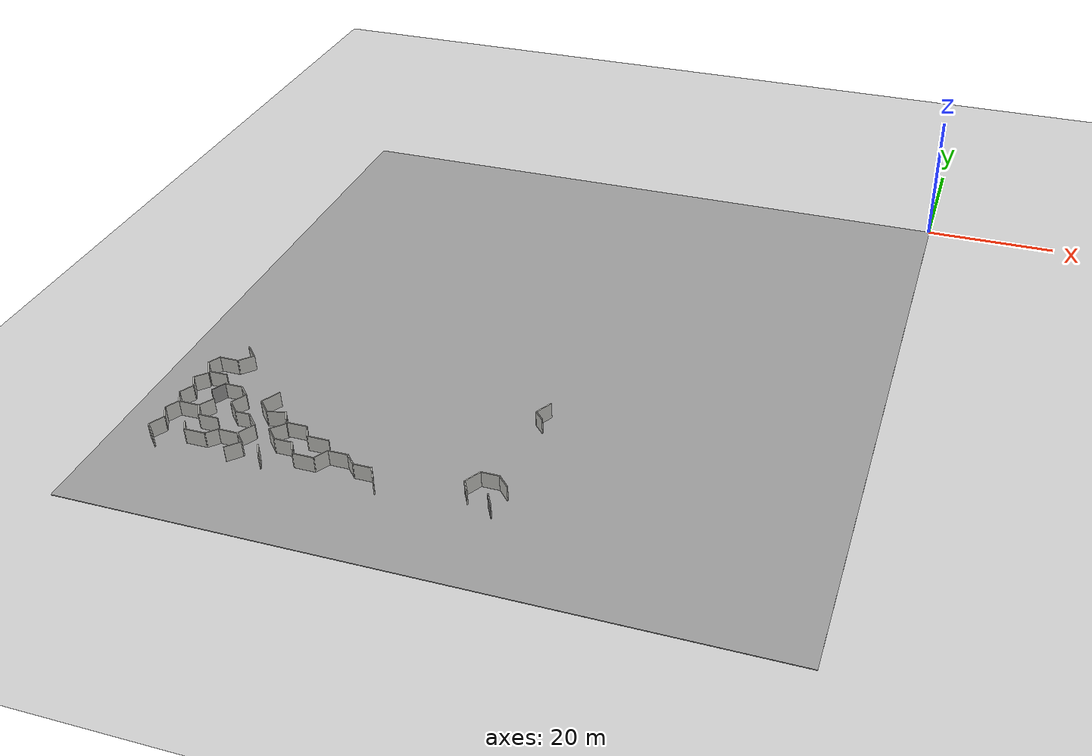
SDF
<sdf version="1.6">
 <world name="default">
  <model name="ground_plane">
   <pose>50 50 0 0 -0 0</pose>
   <static>1</static>
   <link name="link">
    <collision name="collision">
     <geometry><plane><normal>0 0 1</normal><size>100 100</size></plane></geometry>
     <surface><friction><ode><mu>100</mu><mu2>50</mu2></ode></friction></surface>
    </collision>
    <visual name="visual">
     <cast_shadows>0</cast_shadows>
     <geometry><plane><normal>0 0 1</normal><size>100 100</size></plane></geometry>
     <material>
      <script><uri>file://media/materials/scripts/gazebo.material</uri><name>Gazebo/Grey</name></script>
     </material>
    </visual>
   </link>
  </model>
  <model name="ground_plane_1">
   <static>1</static>
   <link name="link">
    <collision name="collision">
     <geometry><plane><normal>0 0 1</normal><size>100 100</size></plane></geometry>
     <surface><friction><ode><mu>100</mu><mu2>50</mu2></ode></friction></surface>
    </collision>
    <visual name="visual">
     <cast_shadows>0</cast_shadows>
     <geometry><plane><normal>0 0 1</normal><size>100 100</size></plane></geometry>
     <material>
      <script><uri>file://media/materials/scripts/gazebo.material</uri><name>Gazebo/Grey</name></script>
     </material>
    </visual>
   </link>
   <pose>-50 -50 0 0 -0 0</pose>
  </model>
  <model name="maze_1">
   <pose>-54.4916 -79.5001 0 0 -0 0</pose>
   <link name="Wall_107">
    <collision name="Wall_107_Collision">
     <geometry><box><size>2.25 0.15 2.5</size></box></geometry>
     <pose>0 0 1.25 0 -0 0</pose>
    </collision>
    <visual name="Wall_107_Visual">
     <pose>0 0 1.25 0 -0 0</pose>
     <geometry><box><size>2.25 0.15 2.5</size></box></geometry>
     <material>
      <script><uri>file://media/materials/scripts/gazebo.material</uri><name>Gazebo/CeilingTiled</name></script>
      <ambient>1 1 1 1</ambient>
     </material>
     <meta><layer>0</layer></meta>
    </visual>
    <pose>-22.6837 -7.08881 0 0 -0 -1.0472</pose>
   </link>
   <link name="Wall_112">
    <collision name="Wall_112_Collision">
     <geometry><box><size>3.25 0.15 2.5</size></box></geometry>
     <pose>0 0 1.25 0 -0 0</pose>
    </collision>
    <visual name="Wall_112_Visual">
     <pose>0 0 1.25 0 -0 0</pose>
     <geometry><box><size>3.25 0.15 2.5</size></box></geometry>
     <material>
      <script><uri>file://media/materials/scripts/gazebo.material</uri><name>Gazebo/CeilingTiled</name></script>
      <ambient>1 1 1 1</ambient>
     </material>
     <meta><layer>0</layer></meta>
    </visual>
    <pose>-16.4783 -6.40245 0 0 -0 3.14159</pose>
   </link>
   <link name="Wall_113">
    <collision name="Wall_113_Collision">
     <geometry><box><size>2.5 0.15 2.5</size></box></geometry>
     <pose>0 0 1.25 0 -0 0</pose>
    </collision>
    <visual name="Wall_113_Visual">
     <pose>0 0 1.25 0 -0 0</pose>
     <geometry><box><size>2.5 0.15 2.5</size></box></geometry>
     <material>
      <script><uri>file://media/materials/scripts/gazebo.material</uri><name>Gazebo/CeilingTiled</name></script>
      <ambient>1 1 1 1</ambient>
     </material>
     <meta><layer>0</layer></meta>
    </visual>
    <pose>-18.6158 -5.38487 0 0 -0 2.0944</pose>
   </link>
   <link name="Wall_114">
    <collision name="Wall_114_Collision">
     <geometry><box><size>2.75 0.15 2.5</size></box></geometry>
     <pose>0 0 1.25 0 -0 0</pose>
    </collision>
    <visual name="Wall_114_Visual">
     <pose>0 0 1.25 0 -0 0</pose>
     <geometry><box><size>2.75 0.15 2.5</size></box></geometry>
     <material>
      <script><uri>file://media/materials/scripts/gazebo.material</uri><name>Gazebo/CeilingTiled</name></script>
      <ambient>1 1 1 1</ambient>
     </material>
     <meta><layer>0</layer></meta>
    </visual>
    <pose>-20.5033 -4.36729 0 0 -0 3.14159</pose>
   </link>
   <link name="Wall_115">
    <collision name="Wall_115_Collision">
     <geometry><box><size>2.5 0.15 2.5</size></box></geometry>
     <pose>0 0 1.25 0 -0 0</pose>
    </collision>
    <visual name="Wall_115_Visual">
     <pose>0 0 1.25 0 -0 0</pose>
     <geometry><box><size>2.5 0.15 2.5</size></box></geometry>
     <material>
      <script><uri>file://media/materials/scripts/gazebo.material</uri><name>Gazebo/CeilingTiled</name></script>
      <ambient>1 1 1 1</ambient>
     </material>
     <meta><layer>0</layer></meta>
    </visual>
    <pose>-22.6341 -3.53644 0 0 -0 2.35619</pose>
   </link>
   <link name="Wall_116">
    <collision name="Wall_116_Collision">
     <geometry><box><size>2.5 0.15 2.5</size></box></geometry>
     <pose>0 0 1.25 0 -0 0</pose>
    </collision>
    <visual name="Wall_116_Visual">
     <pose>0 0 1.25 0 -0 0</pose>
     <geometry><box><size>2.5 0.15 2.5</size></box></geometry>
     <material>
      <script><uri>file://media/materials/scripts/gazebo.material</uri><name>Gazebo/CeilingTiled</name></script>
      <ambient>1 1 1 1</ambient>
     </material>
     <meta><layer>0</layer></meta>
    </visual>
    <pose>-22.6341 -1.87474 0 0 -0 0.785398</pose>
   </link>
   <link name="Wall_117">
    <collision name="Wall_117_Collision">
     <geometry><box><size>2.75 0.15 2.5</size></box></geometry>
     <pose>0 0 1.25 0 -0 0</pose>
    </collision>
    <visual name="Wall_117_Visual">
     <pose>0 0 1.25 0 -0 0</pose>
     <geometry><box><size>2.75 0.15 2.5</size></box></geometry>
     <material>
      <script><uri>file://media/materials/scripts/gazebo.material</uri><name>Gazebo/CeilingTiled</name></script>
      <ambient>1 1 1 1</ambient>
     </material>
     <meta><layer>0</layer></meta>
    </visual>
    <pose>-22.4533 0.081949 0 0 -0 2.0944</pose>
   </link>
   <link name="Wall_118">
    <collision name="Wall_118_Collision">
     <geometry><box><size>2.75 0.15 2.5</size></box></geometry>
     <pose>0 0 1.25 0 -0 0</pose>
    </collision>
    <visual name="Wall_118_Visual">
     <pose>0 0 1.25 0 -0 0</pose>
     <geometry><box><size>2.75 0.15 2.5</size></box></geometry>
     <material>
      <script><uri>file://media/materials/scripts/gazebo.material</uri><name>Gazebo/CeilingTiled</name></script>
      <ambient>1 1 1 1</ambient>
     </material>
     <meta><layer>0</layer></meta>
    </visual>
    <pose>-24.359 0.871317 0 0 -0 -2.87979</pose>
   </link>
   <link name="Wall_119">
    <collision name="Wall_119_Collision">
     <geometry><box><size>2.75 0.15 2.5</size></box></geometry>
     <pose>0 0 1.25 0 -0 0</pose>
    </collision>
    <visual name="Wall_119_Visual">
     <pose>0 0 1.25 0 -0 0</pose>
     <geometry><box><size>2.75 0.15 2.5</size></box></geometry>
     <material>
      <script><uri>file://media/materials/scripts/gazebo.material</uri><name>Gazebo/CeilingTiled</name></script>
      <ambient>1 1 1 1</ambient>
     </material>
     <meta><layer>0</layer></meta>
    </visual>
    <pose>-26.5339 1.45409 0 0 -0 2.35619</pose>
   </link>
   <link name="Wall_120">
    <collision name="Wall_120_Collision">
     <geometry><box><size>3 0.15 2.5</size></box></geometry>
     <pose>0 0 1.25 0 -0 0</pose>
    </collision>
    <visual name="Wall_120_Visual">
     <pose>0 0 1.25 0 -0 0</pose>
     <geometry><box><size>3 0.15 2.5</size></box></geometry>
     <material>
      <script><uri>file://media/materials/scripts/gazebo.material</uri><name>Gazebo/CeilingTiled</name></script>
      <ambient>1 1 1 1</ambient>
     </material>
     <meta><layer>0</layer></meta>
    </visual>
    <pose>-26.7407 3.60742 0 0 -0 1.0472</pose>
   </link>
   <link name="Wall_122">
    <collision name="Wall_122_Collision">
     <geometry><box><size>3.25 0.15 2.5</size></box></geometry>
     <pose>0 0 1.25 0 -0 0</pose>
    </collision>
    <visual name="Wall_122_Visual">
     <pose>0 0 1.25 0 -0 0</pose>
     <geometry><box><size>3.25 0.15 2.5</size></box></geometry>
     <material>
      <script><uri>file://media/materials/scripts/gazebo.material</uri><name>Gazebo/CeilingTiled</name></script>
      <ambient>1 1 1 1</ambient>
     </material>
     <meta><layer>0</layer></meta>
    </visual>
    <pose>-16.2961 -2.59917 0 0 -0 3.14159</pose>
   </link>
   <link name="Wall_123">
    <collision name="Wall_123_Collision">
     <geometry><box><size>2.25 0.15 2.5</size></box></geometry>
     <pose>0 0 1.25 0 -0 0</pose>
    </collision>
    <visual name="Wall_123_Visual">
     <pose>0 0 1.25 0 -0 0</pose>
     <geometry><box><size>2.25 0.15 2.5</size></box></geometry>
     <material>
      <script><uri>file://media/materials/scripts/gazebo.material</uri><name>Gazebo/CeilingTiled</name></script>
      <ambient>1 1 1 1</ambient>
     </material>
     <meta><layer>0</layer></meta>
    </visual>
    <pose>-18.3711 -1.68985 0 0 -0 2.0944</pose>
   </link>
   <link name="Wall_124">
    <collision name="Wall_124_Collision">
     <geometry><box><size>3.25 0.15 2.5</size></box></geometry>
     <pose>0 0 1.25 0 -0 0</pose>
    </collision>
    <visual name="Wall_124_Visual">
     <pose>0 0 1.25 0 -0 0</pose>
     <geometry><box><size>3.25 0.15 2.5</size></box></geometry>
     <material>
      <script><uri>file://media/materials/scripts/gazebo.material</uri><name>Gazebo/CeilingTiled</name></script>
      <ambient>1 1 1 1</ambient>
     </material>
     <meta><layer>0</layer></meta>
    </visual>
    <pose>-20.4461 -0.780521 0 0 -0 3.14159</pose>
   </link>
   <link name="Wall_129">
    <collision name="Wall_129_Collision">
     <geometry><box><size>2.75 0.15 2.5</size></box></geometry>
     <pose>0 0 1.25 0 -0 0</pose>
    </collision>
    <visual name="Wall_129_Visual">
     <pose>0 0 1.25 0 -0 0</pose>
     <geometry><box><size>2.75 0.15 2.5</size></box></geometry>
     <material>
      <script><uri>file://media/materials/scripts/gazebo.material</uri><name>Gazebo/CeilingTiled</name></script>
      <ambient>1 1 1 1</ambient>
     </material>
     <meta><layer>0</layer></meta>
    </visual>
    <pose>-6.22192 -7.135 0 0 -0 2.0944</pose>
   </link>
   <link name="Wall_130">
    <collision name="Wall_130_Collision">
     <geometry><box><size>2.75 0.15 2.5</size></box></geometry>
     <pose>0 0 1.25 0 -0 0</pose>
    </collision>
    <visual name="Wall_130_Visual">
     <pose>0 0 1.25 0 -0 0</pose>
     <geometry><box><size>2.75 0.15 2.5</size></box></geometry>
     <material>
      <script><uri>file://media/materials/scripts/gazebo.material</uri><name>Gazebo/CeilingTiled</name></script>
      <ambient>1 1 1 1</ambient>
     </material>
     <meta><layer>0</layer></meta>
    </visual>
    <pose>-8.17192 -6.00916 0 0 -0 3.14159</pose>
   </link>
   <link name="Wall_131">
    <collision name="Wall_131_Collision">
     <geometry><box><size>2.25 0.15 2.5</size></box></geometry>
     <pose>0 0 1.25 0 -0 0</pose>
    </collision>
    <visual name="Wall_131_Visual">
     <pose>0 0 1.25 0 -0 0</pose>
     <geometry><box><size>2.25 0.15 2.5</size></box></geometry>
     <material>
      <script><uri>file://media/materials/scripts/gazebo.material</uri><name>Gazebo/CeilingTiled</name></script>
      <ambient>1 1 1 1</ambient>
     </material>
     <meta><layer>0</layer></meta>
    </visual>
    <pose>-10.2144 -5.2667 0 0 -0 2.35619</pose>
   </link>
   <link name="Wall_132">
    <collision name="Wall_132_Collision">
     <geometry><box><size>3 0.15 2.5</size></box></geometry>
     <pose>0 0 1.25 0 -0 0</pose>
    </collision>
    <visual name="Wall_132_Visual">
     <pose>0 0 1.25 0 -0 0</pose>
     <geometry><box><size>3 0.15 2.5</size></box></geometry>
     <material>
      <script><uri>file://media/materials/scripts/gazebo.material</uri><name>Gazebo/CeilingTiled</name></script>
      <ambient>1 1 1 1</ambient>
     </material>
     <meta><layer>0</layer></meta>
    </visual>
    <pose>-12.3818 -4.52424 0 0 -0 3.14159</pose>
   </link>
   <link name="Wall_133">
    <collision name="Wall_133_Collision">
     <geometry><box><size>2.33753 0.15 2.5</size></box></geometry>
     <pose>0 0 1.25 0 -0 0</pose>
    </collision>
    <visual name="Wall_133_Visual">
     <pose>0 0 1.25 0 -0 0</pose>
     <geometry><box><size>2.33753 0.15 2.5</size></box></geometry>
     <material>
      <script><uri>file://media/materials/scripts/gazebo.material</uri><name>Gazebo/CeilingTiled</name></script>
      <ambient>1 1 1 1</ambient>
     </material>
     <meta><layer>0</layer></meta>
    </visual>
    <pose>-14.3676 -5.46334 0 0 -0 -2.10906</pose>
   </link>
   <link name="Wall_141">
    <collision name="Wall_141_Collision">
     <geometry><box><size>2 0.15 2.5</size></box></geometry>
     <pose>0 0 1.25 0 -0 0</pose>
    </collision>
    <visual name="Wall_141_Visual">
     <pose>0 0 1.25 0 -0 0</pose>
     <geometry><box><size>2 0.15 2.5</size></box></geometry>
     <material>
      <script><uri>file://media/materials/scripts/gazebo.material</uri><name>Gazebo/CeilingTiled</name></script>
      <ambient>1 1 1 1</ambient>
     </material>
     <meta><layer>0</layer></meta>
    </visual>
    <pose>6.14243 -5.67216 0 0 -0 2.0944</pose>
   </link>
   <link name="Wall_142">
    <collision name="Wall_142_Collision">
     <geometry><box><size>2.75 0.15 2.5</size></box></geometry>
     <pose>0 0 1.25 0 -0 0</pose>
    </collision>
    <visual name="Wall_142_Visual">
     <pose>0 0 1.25 0 -0 0</pose>
     <geometry><box><size>2.75 0.15 2.5</size></box></geometry>
     <material>
      <script><uri>file://media/materials/scripts/gazebo.material</uri><name>Gazebo/CeilingTiled</name></script>
      <ambient>1 1 1 1</ambient>
     </material>
     <meta><layer>0</layer></meta>
    </visual>
    <pose>6.32993 -3.74525 0 0 -0 1.0472</pose>
   </link>
   <link name="Wall_143">
    <collision name="Wall_143_Collision">
     <geometry><box><size>2.75 0.15 2.5</size></box></geometry>
     <pose>0 0 1.25 0 -0 0</pose>
    </collision>
    <visual name="Wall_143_Visual">
     <pose>0 0 1.25 0 -0 0</pose>
     <geometry><box><size>2.75 0.15 2.5</size></box></geometry>
     <material>
      <script><uri>file://media/materials/scripts/gazebo.material</uri><name>Gazebo/CeilingTiled</name></script>
      <ambient>1 1 1 1</ambient>
     </material>
     <meta><layer>0</layer></meta>
    </visual>
    <pose>8.27993 -2.61942 0 0 -0 0</pose>
   </link>
   <link name="Wall_144">
    <collision name="Wall_144_Collision">
     <geometry><box><size>2.5 0.15 2.5</size></box></geometry>
     <pose>0 0 1.25 0 -0 0</pose>
    </collision>
    <visual name="Wall_144_Visual">
     <pose>0 0 1.25 0 -0 0</pose>
     <geometry><box><size>2.5 0.15 2.5</size></box></geometry>
     <material>
      <script><uri>file://media/materials/scripts/gazebo.material</uri><name>Gazebo/CeilingTiled</name></script>
      <ambient>1 1 1 1</ambient>
     </material>
     <meta><layer>0</layer></meta>
    </visual>
    <pose>10.4108 -3.45027 0 0 -0 -0.785398</pose>
   </link>
   <link name="Wall_169">
    <collision name="Wall_169_Collision">
     <geometry><box><size>2 0.15 2.5</size></box></geometry>
     <pose>0 0 1.25 0 -0 0</pose>
    </collision>
    <visual name="Wall_169_Visual">
     <pose>0 0 1.25 0 -0 0</pose>
     <geometry><box><size>2 0.15 2.5</size></box></geometry>
     <material>
      <script><uri>file://media/materials/scripts/gazebo.material</uri><name>Gazebo/CeilingTiled</name></script>
      <ambient>1 1 1 1</ambient>
     </material>
     <meta><layer>0</layer></meta>
    </visual>
    <pose>10.1475 10.6498 0 0 -0 2.35619</pose>
   </link>
   <link name="Wall_170">
    <collision name="Wall_170_Collision">
     <geometry><box><size>2.75 0.15 2.5</size></box></geometry>
     <pose>0 0 1.25 0 -0 0</pose>
    </collision>
    <visual name="Wall_170_Visual">
     <pose>0 0 1.25 0 -0 0</pose>
     <geometry><box><size>2.75 0.15 2.5</size></box></geometry>
     <material>
      <script><uri>file://media/materials/scripts/gazebo.material</uri><name>Gazebo/CeilingTiled</name></script>
      <ambient>1 1 1 1</ambient>
     </material>
     <meta><layer>0</layer></meta>
    </visual>
    <pose>10.1434 12.4297 0 0 -0 1.0472</pose>
   </link>
   <link name="Wall_5">
    <collision name="Wall_5_Collision">
     <geometry><box><size>2.25 0.15 2.5</size></box></geometry>
     <pose>0 0 1.25 0 -0 0</pose>
    </collision>
    <visual name="Wall_5_Visual">
     <pose>0 0 1.25 0 -0 0</pose>
     <geometry><box><size>2.25 0.15 2.5</size></box></geometry>
     <material>
      <script><uri>file://media/materials/scripts/gazebo.material</uri><name>Gazebo/Grey</name></script>
      <ambient>1 1 1 1</ambient>
     </material>
     <meta><layer>0</layer></meta>
    </visual>
    <pose>9.94595 -7.17018 0 0 -0 -1.0472</pose>
   </link>
   <link name="Wall_61">
    <collision name="Wall_61_Collision">
     <geometry><box><size>2.25 0.15 2.5</size></box></geometry>
     <pose>0 0 1.25 0 -0 0</pose>
    </collision>
    <visual name="Wall_61_Visual">
     <pose>0 0 1.25 0 -0 0</pose>
     <geometry><box><size>2.25 0.15 2.5</size></box></geometry>
     <material>
      <script><uri>file://media/materials/scripts/gazebo.material</uri><name>Gazebo/CeilingTiled</name></script>
      <ambient>1 1 1 1</ambient>
     </material>
     <meta><layer>0</layer></meta>
    </visual>
    <pose>-38.7606 -7.30854 0 0 -0 2.35619</pose>
   </link>
   <link name="Wall_62">
    <collision name="Wall_62_Collision">
     <geometry><box><size>2.5 0.15 2.5</size></box></geometry>
     <pose>0 0 1.25 0 -0 0</pose>
    </collision>
    <visual name="Wall_62_Visual">
     <pose>0 0 1.25 0 -0 0</pose>
     <geometry><box><size>2.5 0.15 2.5</size></box></geometry>
     <material>
      <script><uri>file://media/materials/scripts/gazebo.material</uri><name>Gazebo/CeilingTiled</name></script>
      <ambient>1 1 1 1</ambient>
     </material>
     <meta><layer>0</layer></meta>
    </visual>
    <pose>-38.9155 -5.5485 0 0 -0 1.0472</pose>
   </link>
   <link name="Wall_63">
    <collision name="Wall_63_Collision">
     <geometry><box><size>2.25 0.15 2.5</size></box></geometry>
     <pose>0 0 1.25 0 -0 0</pose>
    </collision>
    <visual name="Wall_63_Visual">
     <pose>0 0 1.25 0 -0 0</pose>
     <geometry><box><size>2.25 0.15 2.5</size></box></geometry>
     <material>
      <script><uri>file://media/materials/scripts/gazebo.material</uri><name>Gazebo/CeilingTiled</name></script>
      <ambient>1 1 1 1</ambient>
     </material>
     <meta><layer>0</layer></meta>
    </visual>
    <pose>-38.853 -3.6216 0 0 -0 2.0944</pose>
   </link>
   <link name="Wall_64">
    <collision name="Wall_64_Collision">
     <geometry><box><size>2.25 0.15 2.5</size></box></geometry>
     <pose>0 0 1.25 0 -0 0</pose>
    </collision>
    <visual name="Wall_64_Visual">
     <pose>0 0 1.25 0 -0 0</pose>
     <geometry><box><size>2.25 0.15 2.5</size></box></geometry>
     <material>
      <script><uri>file://media/materials/scripts/gazebo.material</uri><name>Gazebo/CeilingTiled</name></script>
      <ambient>1 1 1 1</ambient>
     </material>
     <meta><layer>0</layer></meta>
    </visual>
    <pose>-38.853 -1.80294 0 0 -0 1.0472</pose>
   </link>
   <link name="Wall_65">
    <collision name="Wall_65_Collision">
     <geometry><box><size>3.25 0.15 2.5</size></box></geometry>
     <pose>0 0 1.25 0 -0 0</pose>
    </collision>
    <visual name="Wall_65_Visual">
     <pose>0 0 1.25 0 -0 0</pose>
     <geometry><box><size>3.25 0.15 2.5</size></box></geometry>
     <material>
      <script><uri>file://media/materials/scripts/gazebo.material</uri><name>Gazebo/CeilingTiled</name></script>
      <ambient>1 1 1 1</ambient>
     </material>
     <meta><layer>0</layer></meta>
    </visual>
    <pose>-36.778 -0.893615 0 0 -0 0</pose>
   </link>
   <link name="Wall_66">
    <collision name="Wall_66_Collision">
     <geometry><box><size>2.25 0.15 2.5</size></box></geometry>
     <pose>0 0 1.25 0 -0 0</pose>
    </collision>
    <visual name="Wall_66_Visual">
     <pose>0 0 1.25 0 -0 0</pose>
     <geometry><box><size>2.25 0.15 2.5</size></box></geometry>
     <material>
      <script><uri>file://media/materials/scripts/gazebo.material</uri><name>Gazebo/CeilingTiled</name></script>
      <ambient>1 1 1 1</ambient>
     </material>
     <meta><layer>0</layer></meta>
    </visual>
    <pose>-34.703 -1.80294 0 0 -0 -1.0472</pose>
   </link>
   <link name="Wall_67">
    <collision name="Wall_67_Collision">
     <geometry><box><size>3 0.15 2.5</size></box></geometry>
     <pose>0 0 1.25 0 -0 0</pose>
    </collision>
    <visual name="Wall_67_Visual">
     <pose>0 0 1.25 0 -0 0</pose>
     <geometry><box><size>3 0.15 2.5</size></box></geometry>
     <material>
      <script><uri>file://media/materials/scripts/gazebo.material</uri><name>Gazebo/CeilingTiled</name></script>
      <ambient>1 1 1 1</ambient>
     </material>
     <meta><layer>0</layer></meta>
    </visual>
    <pose>-32.753 -2.71227 0 0 -0 0</pose>
   </link>
   <link name="Wall_69">
    <collision name="Wall_69_Collision">
     <geometry><box><size>2.3062 0.15 2.5</size></box></geometry>
     <pose>0 0 1.25 0 -0 0</pose>
    </collision>
    <visual name="Wall_69_Visual">
     <pose>0 0 1.25 0 -0 0</pose>
     <geometry><box><size>2.3062 0.15 2.5</size></box></geometry>
     <material>
      <script><uri>file://media/materials/scripts/gazebo.material</uri><name>Gazebo/CeilingTiled</name></script>
      <ambient>1 1 1 1</ambient>
     </material>
     <meta><layer>0</layer></meta>
    </visual>
    <pose>-34.6295 0.003073 0 0 -0 -2.15938</pose>
   </link>
   <link name="Wall_71">
    <collision name="Wall_71_Collision">
     <geometry><box><size>2.25 0.15 2.5</size></box></geometry>
     <pose>0 0 1.25 0 -0 0</pose>
    </collision>
    <visual name="Wall_71_Visual">
     <pose>0 0 1.25 0 -0 0</pose>
     <geometry><box><size>2.25 0.15 2.5</size></box></geometry>
     <material>
      <script><uri>file://media/materials/scripts/gazebo.material</uri><name>Gazebo/CeilingTiled</name></script>
      <ambient>1 1 1 1</ambient>
     </material>
     <meta><layer>0</layer></meta>
    </visual>
    <pose>-38.853 0.015712 0 0 -0 2.0944</pose>
   </link>
   <link name="Wall_72">
    <collision name="Wall_72_Collision">
     <geometry><box><size>2.25 0.15 2.5</size></box></geometry>
     <pose>0 0 1.25 0 -0 0</pose>
    </collision>
    <visual name="Wall_72_Visual">
     <pose>0 0 1.25 0 -0 0</pose>
     <geometry><box><size>2.25 0.15 2.5</size></box></geometry>
     <material>
      <script><uri>file://media/materials/scripts/gazebo.material</uri><name>Gazebo/CeilingTiled</name></script>
      <ambient>1 1 1 1</ambient>
     </material>
     <meta><layer>0</layer></meta>
    </visual>
    <pose>-38.853 1.83437 0 0 -0 1.0472</pose>
   </link>
   <link name="Wall_73">
    <collision name="Wall_73_Collision">
     <geometry><box><size>2.25 0.15 2.5</size></box></geometry>
     <pose>0 0 1.25 0 -0 0</pose>
    </collision>
    <visual name="Wall_73_Visual">
     <pose>0 0 1.25 0 -0 0</pose>
     <geometry><box><size>2.25 0.15 2.5</size></box></geometry>
     <material>
      <script><uri>file://media/materials/scripts/gazebo.material</uri><name>Gazebo/CeilingTiled</name></script>
      <ambient>1 1 1 1</ambient>
     </material>
     <meta><layer>0</layer></meta>
    </visual>
    <pose>-38.853 3.65302 0 0 -0 2.0944</pose>
   </link>
   <link name="Wall_74">
    <collision name="Wall_74_Collision">
     <geometry><box><size>2.25 0.15 2.5</size></box></geometry>
     <pose>0 0 1.25 0 -0 0</pose>
    </collision>
    <visual name="Wall_74_Visual">
     <pose>0 0 1.25 0 -0 0</pose>
     <geometry><box><size>2.25 0.15 2.5</size></box></geometry>
     <material>
      <script><uri>file://media/materials/scripts/gazebo.material</uri><name>Gazebo/CeilingTiled</name></script>
      <ambient>1 1 1 1</ambient>
     </material>
     <meta><layer>0</layer></meta>
    </visual>
    <pose>-38.6356 5.30481 0 0 -0 0.785398</pose>
   </link>
   <link name="Wall_75">
    <collision name="Wall_75_Collision">
     <geometry><box><size>2.75 0.15 2.5</size></box></geometry>
     <pose>0 0 1.25 0 -0 0</pose>
    </collision>
    <visual name="Wall_75_Visual">
     <pose>0 0 1.25 0 -0 0</pose>
     <geometry><box><size>2.75 0.15 2.5</size></box></geometry>
     <material>
      <script><uri>file://media/materials/scripts/gazebo.material</uri><name>Gazebo/CeilingTiled</name></script>
      <ambient>1 1 1 1</ambient>
     </material>
     <meta><layer>0</layer></meta>
    </visual>
    <pose>-38.5431 7.1731 0 0 -0 2.0944</pose>
   </link>
   <link name="Wall_76">
    <collision name="Wall_76_Collision">
     <geometry><box><size>2 0.15 2.5</size></box></geometry>
     <pose>0 0 1.25 0 -0 0</pose>
    </collision>
    <visual name="Wall_76_Visual">
     <pose>0 0 1.25 0 -0 0</pose>
     <geometry><box><size>2 0.15 2.5</size></box></geometry>
     <material>
      <script><uri>file://media/materials/scripts/gazebo.material</uri><name>Gazebo/CeilingTiled</name></script>
      <ambient>1 1 1 1</ambient>
     </material>
     <meta><layer>0</layer></meta>
    </visual>
    <pose>-38.7306 9.10001 0 0 -0 1.0472</pose>
   </link>
   <link name="Wall_77">
    <collision name="Wall_77_Collision">
     <geometry><box><size>3 0.15 2.5</size></box></geometry>
     <pose>0 0 1.25 0 -0 0</pose>
    </collision>
    <visual name="Wall_77_Visual">
     <pose>0 0 1.25 0 -0 0</pose>
     <geometry><box><size>3 0.15 2.5</size></box></geometry>
     <material>
      <script><uri>file://media/materials/scripts/gazebo.material</uri><name>Gazebo/CeilingTiled</name></script>
      <ambient>1 1 1 1</ambient>
     </material>
     <meta><layer>0</layer></meta>
    </visual>
    <pose>-36.8431 9.90108 0 0 -0 0</pose>
   </link>
   <link name="Wall_78">
    <collision name="Wall_78_Collision">
     <geometry><box><size>2.5 0.15 2.5</size></box></geometry>
     <pose>0 0 1.25 0 -0 0</pose>
    </collision>
    <visual name="Wall_78_Visual">
     <pose>0 0 1.25 0 -0 0</pose>
     <geometry><box><size>2.5 0.15 2.5</size></box></geometry>
     <material>
      <script><uri>file://media/materials/scripts/gazebo.material</uri><name>Gazebo/CeilingTiled</name></script>
      <ambient>1 1 1 1</ambient>
     </material>
     <meta><layer>0</layer></meta>
    </visual>
    <pose>-34.5873 10.7319 0 0 -0 0.785398</pose>
   </link>
   <link name="Wall_79">
    <collision name="Wall_79_Collision">
     <geometry><box><size>2.75 0.15 2.5</size></box></geometry>
     <pose>0 0 1.25 0 -0 0</pose>
    </collision>
    <visual name="Wall_79_Visual">
     <pose>0 0 1.25 0 -0 0</pose>
     <geometry><box><size>2.75 0.15 2.5</size></box></geometry>
     <material>
      <script><uri>file://media/materials/scripts/gazebo.material</uri><name>Gazebo/CeilingTiled</name></script>
      <ambient>1 1 1 1</ambient>
     </material>
     <meta><layer>0</layer></meta>
    </visual>
    <pose>-34.6757 12.482 0 0 -0 2.35619</pose>
   </link>
   <link name="Wall_81">
    <collision name="Wall_81_Collision">
     <geometry><box><size>2.75 0.15 2.5</size></box></geometry>
     <pose>0 0 1.25 0 -0 0</pose>
    </collision>
    <visual name="Wall_81_Visual">
     <pose>0 0 1.25 0 -0 0</pose>
     <geometry><box><size>2.75 0.15 2.5</size></box></geometry>
     <material>
      <script><uri>file://media/materials/scripts/gazebo.material</uri><name>Gazebo/CeilingTiled</name></script>
      <ambient>1 1 1 1</ambient>
     </material>
     <meta><layer>0</layer></meta>
    </visual>
    <pose>-36.5515 6.43296 0 0 -0 3.14159</pose>
   </link>
   <link name="Wall_83">
    <collision name="Wall_83_Collision">
     <geometry><box><size>2.25 0.15 2.5</size></box></geometry>
     <pose>0 0 1.25 0 -0 0</pose>
    </collision>
    <visual name="Wall_83_Visual">
     <pose>0 0 1.25 0 -0 0</pose>
     <geometry><box><size>2.25 0.15 2.5</size></box></geometry>
     <material>
      <script><uri>file://media/materials/scripts/gazebo.material</uri><name>Gazebo/Grey</name></script>
      <ambient>1 1 1 1</ambient>
     </material>
     <meta><layer>0</layer></meta>
    </visual>
    <pose>-34.8079 3.59924 0 0 -0 1.0472</pose>
   </link>
   <link name="Wall_84">
    <collision name="Wall_84_Collision">
     <geometry><box><size>2.75 0.15 2.5</size></box></geometry>
     <pose>0 0 1.25 0 -0 0</pose>
    </collision>
    <visual name="Wall_84_Visual">
     <pose>0 0 1.25 0 -0 0</pose>
     <geometry><box><size>2.75 0.15 2.5</size></box></geometry>
     <material>
      <script><uri>file://media/materials/scripts/gazebo.material</uri><name>Gazebo/CeilingTiled</name></script>
      <ambient>1 1 1 1</ambient>
     </material>
     <meta><layer>0</layer></meta>
    </visual>
    <pose>-32.9829 4.50857 0 0 -0 0</pose>
   </link>
   <link name="Wall_85">
    <collision name="Wall_85_Collision">
     <geometry><box><size>2.25 0.15 2.5</size></box></geometry>
     <pose>0 0 1.25 0 -0 0</pose>
    </collision>
    <visual name="Wall_85_Visual">
     <pose>0 0 1.25 0 -0 0</pose>
     <geometry><box><size>2.25 0.15 2.5</size></box></geometry>
     <material>
      <script><uri>file://media/materials/scripts/gazebo.material</uri><name>Gazebo/CeilingTiled</name></script>
      <ambient>1 1 1 1</ambient>
     </material>
     <meta><layer>0</layer></meta>
    </visual>
    <pose>-30.9404 3.76611 0 0 -0 -0.785398</pose>
   </link>
   <link name="Wall_86">
    <collision name="Wall_86_Collision">
     <geometry><box><size>2.5 0.15 2.5</size></box></geometry>
     <pose>0 0 1.25 0 -0 0</pose>
    </collision>
    <visual name="Wall_86_Visual">
     <pose>0 0 1.25 0 -0 0</pose>
     <geometry><box><size>2.5 0.15 2.5</size></box></geometry>
     <material>
      <script><uri>file://media/materials/scripts/gazebo.material</uri><name>Gazebo/CeilingTiled</name></script>
      <ambient>1 1 1 1</ambient>
     </material>
     <meta><layer>0</layer></meta>
    </visual>
    <pose>-30.7855 2.00606 0 0 -0 -2.0944</pose>
   </link>
   <link name="Wall_87">
    <collision name="Wall_87_Collision">
     <geometry><box><size>2.5 0.15 2.5</size></box></geometry>
     <pose>0 0 1.25 0 -0 0</pose>
    </collision>
    <visual name="Wall_87_Visual">
     <pose>0 0 1.25 0 -0 0</pose>
     <geometry><box><size>2.5 0.15 2.5</size></box></geometry>
     <material>
      <script><uri>file://media/materials/scripts/gazebo.material</uri><name>Gazebo/CeilingTiled</name></script>
      <ambient>1 1 1 1</ambient>
     </material>
     <meta><layer>0</layer></meta>
    </visual>
    <pose>-30.5421 0.157634 0 0 -0 -0.785398</pose>
   </link>
   <link name="Wall_88">
    <collision name="Wall_88_Collision">
     <geometry><box><size>2.25 0.15 2.5</size></box></geometry>
     <pose>0 0 1.25 0 -0 0</pose>
    </collision>
    <visual name="Wall_88_Visual">
     <pose>0 0 1.25 0 -0 0</pose>
     <geometry><box><size>2.25 0.15 2.5</size></box></geometry>
     <material>
      <script><uri>file://media/materials/scripts/gazebo.material</uri><name>Gazebo/CeilingTiled</name></script>
      <ambient>1 1 1 1</ambient>
     </material>
     <meta><layer>0</layer></meta>
    </visual>
    <pose>-28.6613 -0.673216 0 0 -0 0</pose>
   </link>
   <link name="Wall_89">
    <collision name="Wall_89_Collision">
     <geometry><box><size>2.75 0.15 2.5</size></box></geometry>
     <pose>0 0 1.25 0 -0 0</pose>
    </collision>
    <visual name="Wall_89_Visual">
     <pose>0 0 1.25 0 -0 0</pose>
     <geometry><box><size>2.75 0.15 2.5</size></box></geometry>
     <material>
      <script><uri>file://media/materials/scripts/gazebo.material</uri><name>Gazebo/CeilingTiled</name></script>
      <ambient>1 1 1 1</ambient>
     </material>
     <meta><layer>0</layer></meta>
    </visual>
    <pose>-26.692 -1.59245 0 0 -0 -0.785398</pose>
   </link>
   <link name="Wall_9">
    <collision name="Wall_9_Collision">
     <geometry><box><size>2.25 0.15 2.5</size></box></geometry>
     <pose>0 0 1.25 0 -0 0</pose>
    </collision>
    <visual name="Wall_9_Visual">
     <pose>0 0 1.25 0 -0 0</pose>
     <geometry><box><size>2.25 0.15 2.5</size></box></geometry>
     <material>
      <script><uri>file://media/materials/scripts/gazebo.material</uri><name>Gazebo/CeilingTiled</name></script>
      <ambient>1 1 1 1</ambient>
     </material>
     <meta><layer>0</layer></meta>
    </visual>
    <pose>9.94595 -7.17018 0 0 -0 -1.0472</pose>
   </link>
   <link name="Wall_90">
    <collision name="Wall_90_Collision">
     <geometry><box><size>2.75 0.15 2.5</size></box></geometry>
     <pose>0 0 1.25 0 -0 0</pose>
    </collision>
    <visual name="Wall_90_Visual">
     <pose>0 0 1.25 0 -0 0</pose>
     <geometry><box><size>2.75 0.15 2.5</size></box></geometry>
     <material>
      <script><uri>file://media/materials/scripts/gazebo.material</uri><name>Gazebo/CeilingTiled</name></script>
      <ambient>1 1 1 1</ambient>
     </material>
     <meta><layer>0</layer></meta>
    </visual>
    <pose>-26.4228 -3.63753 0 0 -0 -2.0944</pose>
   </link>
   <link name="Wall_91">
    <collision name="Wall_91_Collision">
     <geometry><box><size>3 0.15 2.5</size></box></geometry>
     <pose>0 0 1.25 0 -0 0</pose>
    </collision>
    <visual name="Wall_91_Visual">
     <pose>0 0 1.25 0 -0 0</pose>
     <geometry><box><size>3 0.15 2.5</size></box></geometry>
     <material>
      <script><uri>file://media/materials/scripts/gazebo.material</uri><name>Gazebo/CeilingTiled</name></script>
      <ambient>1 1 1 1</ambient>
     </material>
     <meta><layer>0</layer></meta>
    </visual>
    <pose>-28.4978 -4.76336 0 0 -0 3.14159</pose>
   </link>
   <link name="Wall_92">
    <collision name="Wall_92_Collision">
     <geometry><box><size>2 0.15 2.5</size></box></geometry>
     <pose>0 0 1.25 0 -0 0</pose>
    </collision>
    <visual name="Wall_92_Visual">
     <pose>0 0 1.25 0 -0 0</pose>
     <geometry><box><size>2 0.15 2.5</size></box></geometry>
     <material>
      <script><uri>file://media/materials/scripts/gazebo.material</uri><name>Gazebo/CeilingTiled</name></script>
      <ambient>1 1 1 1</ambient>
     </material>
     <meta><layer>0</layer></meta>
    </visual>
    <pose>-30.5769 -5.41743 0 0 -0 -2.35619</pose>
   </link>
   <link name="Wall_93">
    <collision name="Wall_93_Collision">
     <geometry><box><size>3.25 0.15 2.5</size></box></geometry>
     <pose>0 0 1.25 0 -0 0</pose>
    </collision>
    <visual name="Wall_93_Visual">
     <pose>0 0 1.25 0 -0 0</pose>
     <geometry><box><size>3.25 0.15 2.5</size></box></geometry>
     <material>
      <script><uri>file://media/materials/scripts/gazebo.material</uri><name>Gazebo/CeilingTiled</name></script>
      <ambient>1 1 1 1</ambient>
     </material>
     <meta><layer>0</layer></meta>
    </visual>
    <pose>-32.7809 -6.07151 0 0 -0 3.14159</pose>
   </link>
   <link name="Wall_94">
    <collision name="Wall_94_Collision">
     <geometry><box><size>1.75 0.15 2.5</size></box></geometry>
     <pose>0 0 1.25 0 -0 0</pose>
    </collision>
    <visual name="Wall_94_Visual">
     <pose>0 0 1.25 0 -0 0</pose>
     <geometry><box><size>1.75 0.15 2.5</size></box></geometry>
     <material>
      <script><uri>file://media/materials/scripts/gazebo.material</uri><name>Gazebo/CeilingTiled</name></script>
      <ambient>1 1 1 1</ambient>
     </material>
     <meta><layer>0</layer></meta>
    </visual>
    <pose>-34.7309 -5.37869 0 0 -0 2.0944</pose>
   </link>
   <link name="Wall_96">
    <collision name="Wall_96_Collision">
     <geometry><box><size>2.25 0.15 2.5</size></box></geometry>
     <pose>0 0 1.25 0 -0 0</pose>
    </collision>
    <visual name="Wall_96_Visual">
     <pose>0 0 1.25 0 -0 0</pose>
     <geometry><box><size>2.25 0.15 2.5</size></box></geometry>
     <material>
      <script><uri>file://media/materials/scripts/gazebo.material</uri><name>Gazebo/CeilingTiled</name></script>
      <ambient>1 1 1 1</ambient>
     </material>
     <meta><layer>0</layer></meta>
    </visual>
    <pose>-26.3303 -5.50582 0 0 -0 -0.785398</pose>
   </link>
   <link name="Wall_97">
    <collision name="Wall_97_Collision">
     <geometry><box><size>2.5 0.15 2.5</size></box></geometry>
     <pose>0 0 1.25 0 -0 0</pose>
    </collision>
    <visual name="Wall_97_Visual">
     <pose>0 0 1.25 0 -0 0</pose>
     <geometry><box><size>2.5 0.15 2.5</size></box></geometry>
     <material>
      <script><uri>file://media/materials/scripts/gazebo.material</uri><name>Gazebo/CeilingTiled</name></script>
      <ambient>1 1 1 1</ambient>
     </material>
     <meta><layer>0</layer></meta>
    </visual>
    <pose>-26.4187 -7.07913 0 0 -0 -2.35619</pose>
   </link>
   <static>1</static>
  </model>
 </world>
</sdf>
